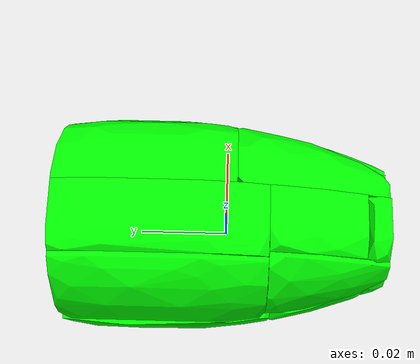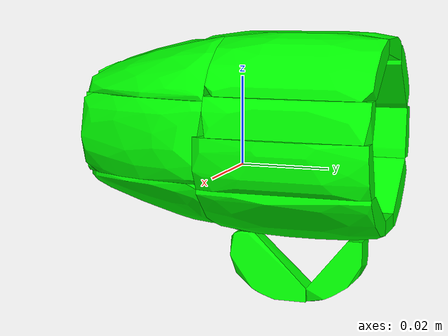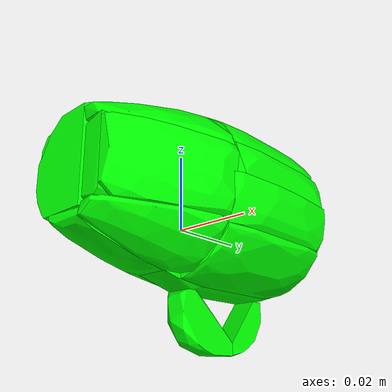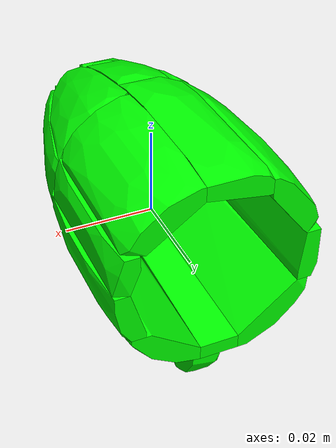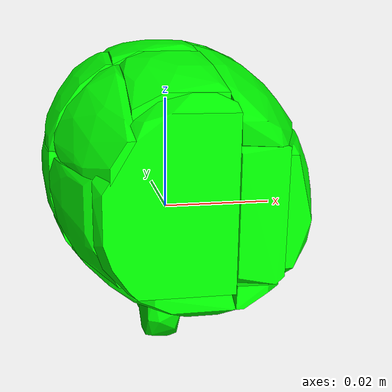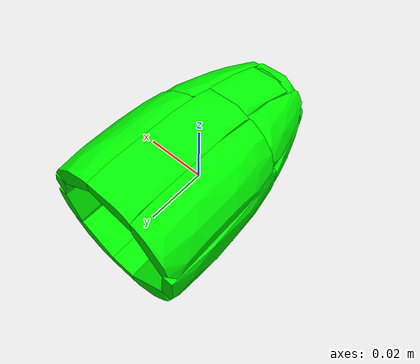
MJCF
<mujoco model="shapenet9-27">
  <asset>
    <mesh file="meshes/shapenet9-27/shapenet9-27_0.stl" name="shapenet9-27_0" scale="0.1 0.1 0.1"/>
    <mesh file="meshes/shapenet9-27/shapenet9-27_1.stl" name="shapenet9-27_1" scale="0.1 0.1 0.1"/>
    <mesh file="meshes/shapenet9-27/shapenet9-27_2.stl" name="shapenet9-27_2" scale="0.1 0.1 0.1"/>
    <mesh file="meshes/shapenet9-27/shapenet9-27_3.stl" name="shapenet9-27_3" scale="0.1 0.1 0.1"/>
    <mesh file="meshes/shapenet9-27/shapenet9-27_4.stl" name="shapenet9-27_4" scale="0.1 0.1 0.1"/>
    <mesh file="meshes/shapenet9-27/shapenet9-27_5.stl" name="shapenet9-27_5" scale="0.1 0.1 0.1"/>
    <mesh file="meshes/shapenet9-27/shapenet9-27_6.stl" name="shapenet9-27_6" scale="0.1 0.1 0.1"/>
    <mesh file="meshes/shapenet9-27/shapenet9-27_7.stl" name="shapenet9-27_7" scale="0.1 0.1 0.1"/>
    <mesh file="meshes/shapenet9-27/shapenet9-27_8.stl" name="shapenet9-27_8" scale="0.1 0.1 0.1"/>
    <mesh file="meshes/shapenet9-27/shapenet9-27_9.stl" name="shapenet9-27_9" scale="0.1 0.1 0.1"/>
    <mesh file="meshes/shapenet9-27/shapenet9-27_10.stl" name="shapenet9-27_10" scale="0.1 0.1 0.1"/>
    <mesh file="meshes/shapenet9-27/shapenet9-27_11.stl" name="shapenet9-27_11" scale="0.1 0.1 0.1"/>
    <mesh file="meshes/shapenet9-27/shapenet9-27_12.stl" name="shapenet9-27_12" scale="0.1 0.1 0.1"/>
    <mesh file="meshes/shapenet9-27/shapenet9-27_13.stl" name="shapenet9-27_13" scale="0.1 0.1 0.1"/>
    <mesh file="meshes/shapenet9-27/shapenet9-27_14.stl" name="shapenet9-27_14" scale="0.1 0.1 0.1"/>
    <mesh file="meshes/shapenet9-27/shapenet9-27_15.stl" name="shapenet9-27_15" scale="0.1 0.1 0.1"/>
    <mesh file="meshes/shapenet9-27/shapenet9-27_16.stl" name="shapenet9-27_16" scale="0.1 0.1 0.1"/>
    <mesh file="meshes/shapenet9-27/shapenet9-27_17.stl" name="shapenet9-27_17" scale="0.1 0.1 0.1"/>
    <mesh file="meshes/shapenet9-27/shapenet9-27_18.stl" name="shapenet9-27_18" scale="0.1 0.1 0.1"/>
    <mesh file="meshes/shapenet9-27/shapenet9-27_19.stl" name="shapenet9-27_19" scale="0.1 0.1 0.1"/>
  </asset>
  <worldbody>
    <body>
      <body name="collision">
        <geom pos="0 0 0" mesh="shapenet9-27_0" type="mesh" solimp="0.998 0.998 0.001" solref="0.001 1" density="100" friction="0.95 0.3 0.1" rgba="0 1 0 1" group="1" condim="4"/>
        <geom pos="0 0 0" mesh="shapenet9-27_1" type="mesh" solimp="0.998 0.998 0.001" solref="0.001 1" density="100" friction="0.95 0.3 0.1" rgba="0 1 0 1" group="1" condim="4"/>
        <geom pos="0 0 0" mesh="shapenet9-27_2" type="mesh" solimp="0.998 0.998 0.001" solref="0.001 1" density="100" friction="0.95 0.3 0.1" rgba="0 1 0 1" group="1" condim="4"/>
        <geom pos="0 0 0" mesh="shapenet9-27_3" type="mesh" solimp="0.998 0.998 0.001" solref="0.001 1" density="100" friction="0.95 0.3 0.1" rgba="0 1 0 1" group="1" condim="4"/>
        <geom pos="0 0 0" mesh="shapenet9-27_4" type="mesh" solimp="0.998 0.998 0.001" solref="0.001 1" density="100" friction="0.95 0.3 0.1" rgba="0 1 0 1" group="1" condim="4"/>
        <geom pos="0 0 0" mesh="shapenet9-27_5" type="mesh" solimp="0.998 0.998 0.001" solref="0.001 1" density="100" friction="0.95 0.3 0.1" rgba="0 1 0 1" group="1" condim="4"/>
        <geom pos="0 0 0" mesh="shapenet9-27_6" type="mesh" solimp="0.998 0.998 0.001" solref="0.001 1" density="100" friction="0.95 0.3 0.1" rgba="0 1 0 1" group="1" condim="4"/>
        <geom pos="0 0 0" mesh="shapenet9-27_7" type="mesh" solimp="0.998 0.998 0.001" solref="0.001 1" density="100" friction="0.95 0.3 0.1" rgba="0 1 0 1" group="1" condim="4"/>
        <geom pos="0 0 0" mesh="shapenet9-27_8" type="mesh" solimp="0.998 0.998 0.001" solref="0.001 1" density="100" friction="0.95 0.3 0.1" rgba="0 1 0 1" group="1" condim="4"/>
        <geom pos="0 0 0" mesh="shapenet9-27_9" type="mesh" solimp="0.998 0.998 0.001" solref="0.001 1" density="100" friction="0.95 0.3 0.1" rgba="0 1 0 1" group="1" condim="4"/>
        <geom pos="0 0 0" mesh="shapenet9-27_10" type="mesh" solimp="0.998 0.998 0.001" solref="0.001 1" density="100" friction="0.95 0.3 0.1" rgba="0 1 0 1" group="1" condim="4"/>
        <geom pos="0 0 0" mesh="shapenet9-27_11" type="mesh" solimp="0.998 0.998 0.001" solref="0.001 1" density="100" friction="0.95 0.3 0.1" rgba="0 1 0 1" group="1" condim="4"/>
        <geom pos="0 0 0" mesh="shapenet9-27_12" type="mesh" solimp="0.998 0.998 0.001" solref="0.001 1" density="100" friction="0.95 0.3 0.1" rgba="0 1 0 1" group="1" condim="4"/>
        <geom pos="0 0 0" mesh="shapenet9-27_13" type="mesh" solimp="0.998 0.998 0.001" solref="0.001 1" density="100" friction="0.95 0.3 0.1" rgba="0 1 0 1" group="1" condim="4"/>
        <geom pos="0 0 0" mesh="shapenet9-27_14" type="mesh" solimp="0.998 0.998 0.001" solref="0.001 1" density="100" friction="0.95 0.3 0.1" rgba="0 1 0 1" group="1" condim="4"/>
        <geom pos="0 0 0" mesh="shapenet9-27_15" type="mesh" solimp="0.998 0.998 0.001" solref="0.001 1" density="100" friction="0.95 0.3 0.1" rgba="0 1 0 1" group="1" condim="4"/>
        <geom pos="0 0 0" mesh="shapenet9-27_16" type="mesh" solimp="0.998 0.998 0.001" solref="0.001 1" density="100" friction="0.95 0.3 0.1" rgba="0 1 0 1" group="1" condim="4"/>
        <geom pos="0 0 0" mesh="shapenet9-27_17" type="mesh" solimp="0.998 0.998 0.001" solref="0.001 1" density="100" friction="0.95 0.3 0.1" rgba="0 1 0 1" group="1" condim="4"/>
        <geom pos="0 0 0" mesh="shapenet9-27_18" type="mesh" solimp="0.998 0.998 0.001" solref="0.001 1" density="100" friction="0.95 0.3 0.1" rgba="0 1 0 1" group="1" condim="4"/>
        <geom pos="0 0 0" mesh="shapenet9-27_19" type="mesh" solimp="0.998 0.998 0.001" solref="0.001 1" density="100" friction="0.95 0.3 0.1" rgba="0 1 0 1" group="1" condim="4"/>
      </body>
      <body name="visual">
        <geom pos="0 0 0" mesh="shapenet9-27_0" type="mesh" rgba="0 1 0 1" conaffinity="0" contype="0" group="0" mass="0.0001"/>
        <geom pos="0 0 0" mesh="shapenet9-27_1" type="mesh" rgba="0 1 0 1" conaffinity="0" contype="0" group="0" mass="0.0001"/>
        <geom pos="0 0 0" mesh="shapenet9-27_2" type="mesh" rgba="0 1 0 1" conaffinity="0" contype="0" group="0" mass="0.0001"/>
        <geom pos="0 0 0" mesh="shapenet9-27_3" type="mesh" rgba="0 1 0 1" conaffinity="0" contype="0" group="0" mass="0.0001"/>
        <geom pos="0 0 0" mesh="shapenet9-27_4" type="mesh" rgba="0 1 0 1" conaffinity="0" contype="0" group="0" mass="0.0001"/>
        <geom pos="0 0 0" mesh="shapenet9-27_5" type="mesh" rgba="0 1 0 1" conaffinity="0" contype="0" group="0" mass="0.0001"/>
        <geom pos="0 0 0" mesh="shapenet9-27_6" type="mesh" rgba="0 1 0 1" conaffinity="0" contype="0" group="0" mass="0.0001"/>
        <geom pos="0 0 0" mesh="shapenet9-27_7" type="mesh" rgba="0 1 0 1" conaffinity="0" contype="0" group="0" mass="0.0001"/>
        <geom pos="0 0 0" mesh="shapenet9-27_8" type="mesh" rgba="0 1 0 1" conaffinity="0" contype="0" group="0" mass="0.0001"/>
        <geom pos="0 0 0" mesh="shapenet9-27_9" type="mesh" rgba="0 1 0 1" conaffinity="0" contype="0" group="0" mass="0.0001"/>
        <geom pos="0 0 0" mesh="shapenet9-27_10" type="mesh" rgba="0 1 0 1" conaffinity="0" contype="0" group="0" mass="0.0001"/>
        <geom pos="0 0 0" mesh="shapenet9-27_11" type="mesh" rgba="0 1 0 1" conaffinity="0" contype="0" group="0" mass="0.0001"/>
        <geom pos="0 0 0" mesh="shapenet9-27_12" type="mesh" rgba="0 1 0 1" conaffinity="0" contype="0" group="0" mass="0.0001"/>
        <geom pos="0 0 0" mesh="shapenet9-27_13" type="mesh" rgba="0 1 0 1" conaffinity="0" contype="0" group="0" mass="0.0001"/>
        <geom pos="0 0 0" mesh="shapenet9-27_14" type="mesh" rgba="0 1 0 1" conaffinity="0" contype="0" group="0" mass="0.0001"/>
        <geom pos="0 0 0" mesh="shapenet9-27_15" type="mesh" rgba="0 1 0 1" conaffinity="0" contype="0" group="0" mass="0.0001"/>
        <geom pos="0 0 0" mesh="shapenet9-27_16" type="mesh" rgba="0 1 0 1" conaffinity="0" contype="0" group="0" mass="0.0001"/>
        <geom pos="0 0 0" mesh="shapenet9-27_17" type="mesh" rgba="0 1 0 1" conaffinity="0" contype="0" group="0" mass="0.0001"/>
        <geom pos="0 0 0" mesh="shapenet9-27_18" type="mesh" rgba="0 1 0 1" conaffinity="0" contype="0" group="0" mass="0.0001"/>
        <geom pos="0 0 0" mesh="shapenet9-27_19" type="mesh" rgba="0 1 0 1" conaffinity="0" contype="0" group="0" mass="0.0001"/>
      </body>
      <site rgba="0 0 0 0" size="0.005" pos="0 0 -0.06" name="bottom_site"/>
      <site rgba="0 0 0 0" size="0.005" pos="0 0 0.04" name="top_site"/>
      <site rgba="0 0 0 0" size="0.005" pos="0.025 0.025 0" name="horizontal_radius_site"/>
    </body>
  </worldbody>
</mujoco>
